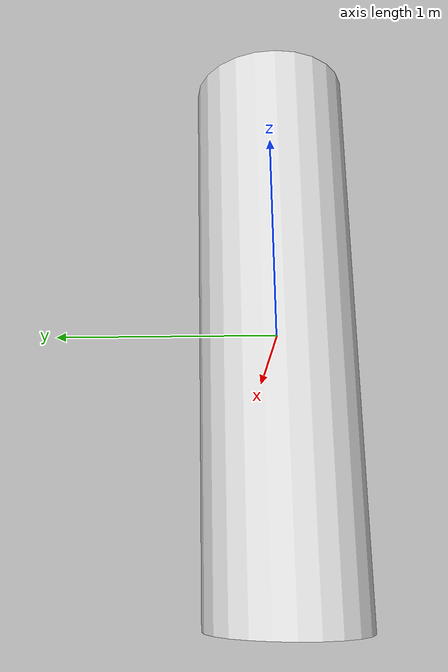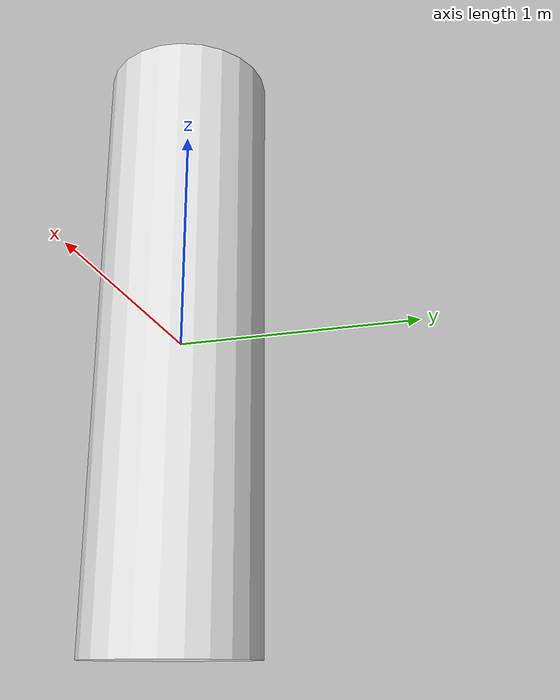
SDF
<?xml version="1.0" ?>
<sdf version="1.6">
    <model name="Bcylinder">
      <link name='link'>
        <inertial>
          <mass>1</mass>
          <inertia>
            <ixx>0.145833</ixx>
            <ixy>0</ixy>
            <ixz>0</ixz>
            <iyy>0.145833</iyy>
            <iyz>0</iyz>
            <izz>0.125</izz>
          </inertia>
        </inertial>
        <collision name='collision'>
          <geometry>
            <cylinder>
              <radius>0.35</radius>
              <length>2.5</length>
            </cylinder>
          </geometry>
        </collision>
        <visual name='visual'>
          <geometry>
            <cylinder>
              <radius>0.35</radius>
              <length>2.5</length>
            </cylinder>
          </geometry>
          <material>
            <script>
              <name>Gazebo/White</name>
              <uri>file://media/materials/scripts/gazebo.material</uri>
            </script>
          </material>
        </visual>
      </link>
    </model>
</sdf>
